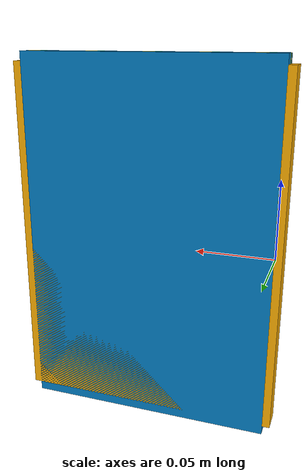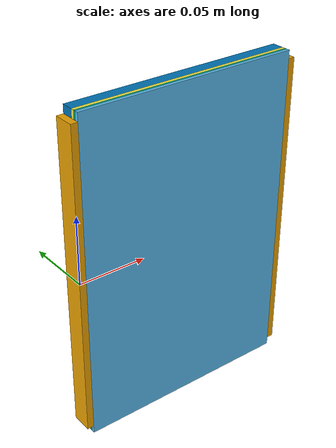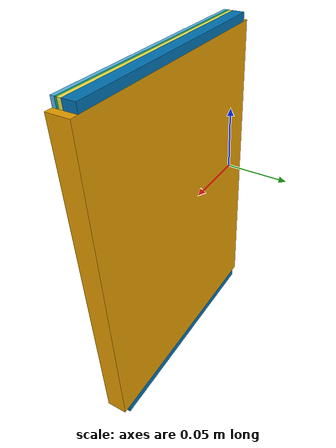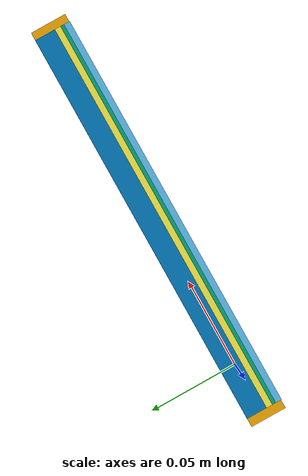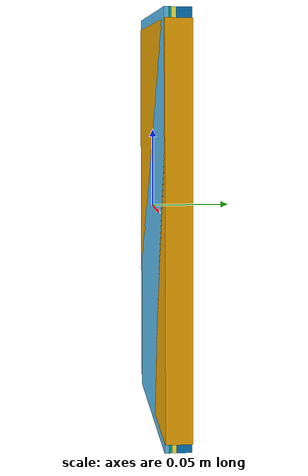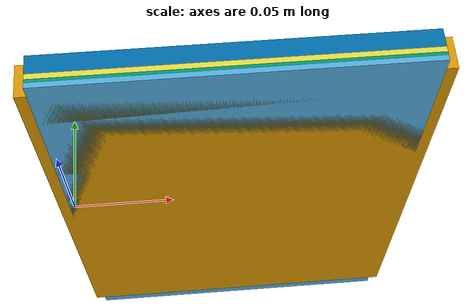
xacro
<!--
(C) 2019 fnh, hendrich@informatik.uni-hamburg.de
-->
<?xml version="1.0" ?>
<robot name="articulate_book_lagemann"
       xmlns:controller="http://playerstage.sourceforge.net/gazebo/xmlschema/#controller"
       xmlns:interface="http://playerstage.sourceforge.net/gazebo/xmlschema/#interface"
       xmlns:sensor="http://playerstage.sourceforge.net/gazebo/xmlschema/#sensor"
       xmlns:xacro="http://www.ros.org/wiki/xacro">

  <xacro:include filename="$(find tams_books_world)/urdf/book_part.xacro" />

  <!-- main link, no inertia, no collision, no visual -->
  <link name="book_lagemann_link" >
    <visual>
      <origin xyz="${0.165/2} 0 0" rpy="0 0 0" />
      <geometry>
        <box size="0.175 0.015 0.230" rpy="0 0 0" />
      </geometry>
    </visual>
  </link>

  <xacro:book_part
      name="book_lagemann_part1"
      weight="0.092"
      mesh="lagemann/book-lagemann-part1.dae"
      xsize="0.165"
      ysize="0.0025"
      zsize="0.242"
  />

  <xacro:book_part
      name="book_lagemann_part2"
      weight="0.055"
      mesh="lagemann/book-lagemann-part2.dae"
      xsize="0.165"
      ysize="0.0015"
      zsize="0.242"
  />

  <xacro:book_part
      name="book_lagemann_part3"
      weight="0.092"
      mesh="lagemann/book-lagemann-part3.dae"
      xsize="0.165"
      ysize="0.0025"
      zsize="0.242"
  />

  <xacro:book_part
      name="book_lagemann_part4"
      weight="0.313"
      mesh="lagemann/book-lagemann-part4.dae"
      xsize="0.165"
      ysize="0.0085"
      zsize="0.242"
  />

  <!-- back part of the book fixed to the root link -->
  <joint name="book_lagemann_part4_joint" type="fixed" >
    <parent link="book_lagemann_link" />
    <child  link="book_lagemann_part4_link" />
    <origin xyz="0 ${0.015/2} 0" rpy="0 0 0" />
  </joint>

  <joint name="book_lagemann_part1_joint" type="revolute" >
    <parent link="book_lagemann_part2_link" />
    <child  link="book_lagemann_part1_link" />
    <axis xyz="0 0 1" />
    <origin xyz="0 ${-0.0015} 0" rpy="0 0 0" />
    <limit lower="-3.14" upper="0.0" effort="1" velocity="1" />
  </joint>

  <joint name="book_lagemann_part2_joint" type="revolute" >
    <parent link="book_lagemann_part3_link" />
    <child  link="book_lagemann_part2_link" />
    <axis xyz="0 0 1" />
    <origin xyz="0 ${-0.0025} 0" rpy="0 0 0" />
    <limit lower="-3.14" upper="0.0" effort="1" velocity="1" />
  </joint>

  <joint name="book_lagemann_part3_joint" type="revolute" >
    <parent link="book_lagemann_part4_link" />
    <child  link="book_lagemann_part3_link" />
    <axis xyz="0 0 1" />
    <origin xyz="0  ${-0.0085} 0" rpy="0 0 0" />
    <limit lower="-3.14" upper="0.0" effort="1" velocity="1" />
  </joint>

</robot>

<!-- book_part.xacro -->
<robot name="book_part"
       xmlns:controller="http://playerstage.sourceforge.net/gazebo/xmlschema/#controller"
       xmlns:interface="http://playerstage.sourceforge.net/gazebo/xmlschema/#interface"
       xmlns:sensor="http://playerstage.sourceforge.net/gazebo/xmlschema/#sensor"
       xmlns:xacro="http://www.ros.org/wiki/xacro">

<xacro:macro name="book_part" params="name weight mesh xsize ysize zsize">

  <!-- main body with Collada mesh for both visual and collision -->
  <link name="${name}_link">
    <inertial>
      <mass value="${weight}"/>
      <origin rpy="0 0 0" xyz="${xsize/2} ${-ysize/2} 0"/>
      <inertia ixx="0.001" ixy="0" ixz="0" iyy="0.001" iyz="0" izz="0.001"/>
    </inertial>
    <collision>
      <origin rpy="0 0 0" xyz="${xsize/2} ${-ysize/2} 0"/>
      <geometry>
        <box size="${xsize} ${ysize} ${zsize}" rpy="0 0 0" />
      </geometry>
    </collision>
    <visual>
      <origin rpy="0 0 0" xyz="${xsize/2} ${-ysize/2} 0"/>
      <geometry>
        <mesh filename="package://tams_books_world/meshes/${mesh}" scale="${0.5*xsize} ${0.5*ysize} ${0.5*zsize}" />
      </geometry>
    </visual>
  </link>
  <gazebo reference="${name}_link">
    <!-- material/texture definition for Gazebo -->
    <turnGravityOff>false</turnGravityOff>
    <selfCollide>true</selfCollide>
    <mu1>10</mu1>
    <mu2>20</mu2>
    <kp>1000000.0</kp>
    <kd>1.0</kd>
  </gazebo>
</xacro:macro>

</robot>
